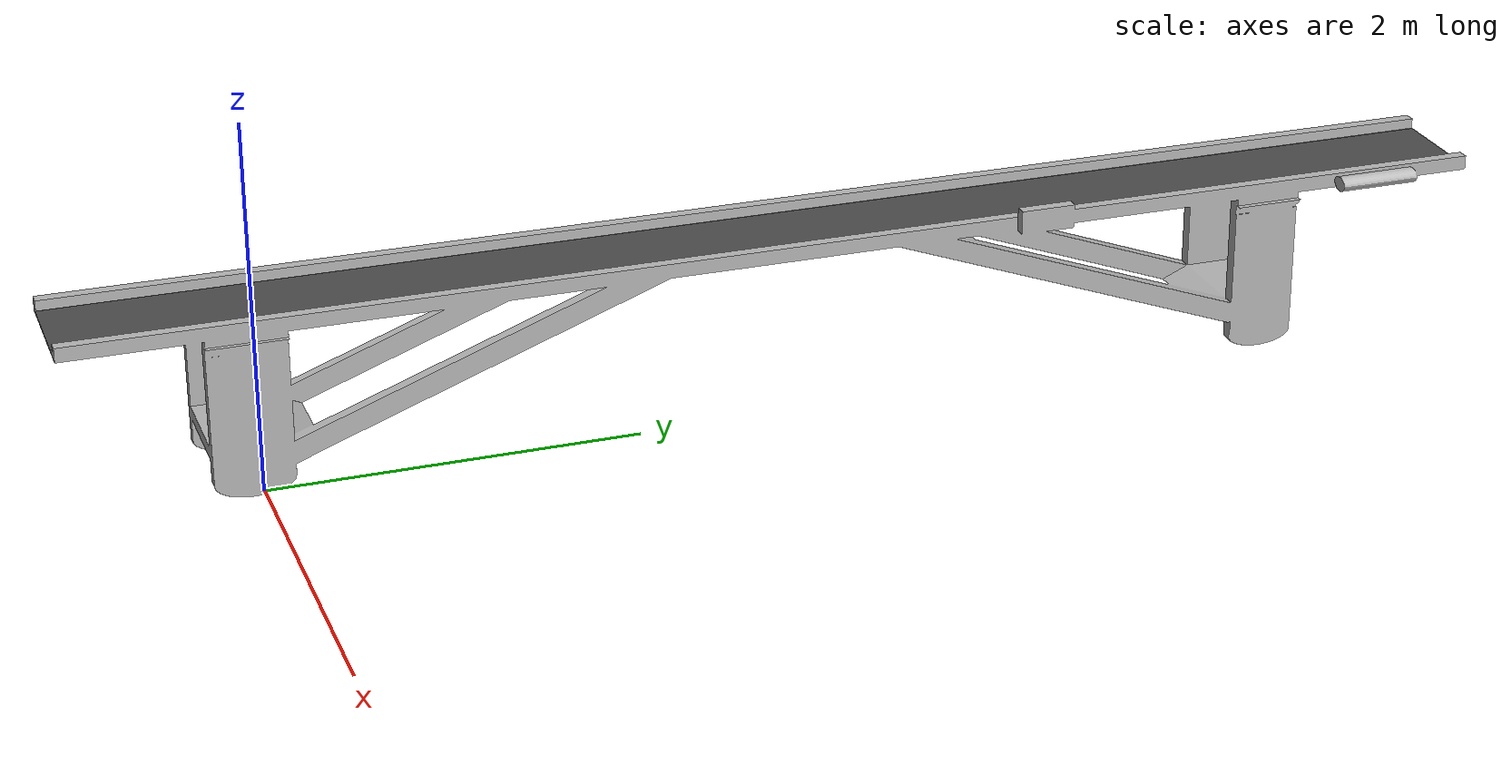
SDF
<?xml version='1.0'?>
<sdf version='1.6'>
  <model name='conveyor'>
    <link name='body'>
      <self_collide>0</self_collide>
      <enable_wind>0</enable_wind>
      <kinematic>0</kinematic>
      <pose frame=''>0 0 0 0 -0 0</pose>
      <gravity>1</gravity>
      <inertial>
        <mass>10</mass>
        <pose frame=''>0 0 0 0 -0 0</pose>
        <inertia>
          <ixx>1</ixx>
          <ixy>0</ixy>
          <ixz>0</ixz>
          <iyy>1</iyy>
          <iyz>0</iyz>
          <izz>1</izz>
        </inertia>
      </inertial>
      <visual name='visual'>
        <geometry>
          <mesh>
            <uri>model://conveyor/conveyor.stl</uri>
            <scale>0.9 1.7 0.68</scale>
          </mesh>
        </geometry>
        <pose frame=''>-0.6 -1 0.9 0 -0 0</pose>
        <transparency>0</transparency>
        <cast_shadows>1</cast_shadows>
      </visual>
    </link>

    <link name='belt'>
      <pose frame=''>-0.27 2.88 0.925 0 -0 1.57</pose>
      <inertial>
        <inertia>
          <ixx>3.8185</ixx>
          <ixy>0</ixy>
          <ixz>0</ixz>
          <iyy>1781.5</iyy>
          <iyz>0</iyz>
          <izz>1784.72</izz>
        </inertia>
        <mass>10</mass>
      </inertial>
      <visual name='belt_collision'>
        <geometry>
          <box>
            <size>7.77 0.5 0.006</size>
          </box>
        </geometry>
        <material>
          <script>
            <uri>file://media/materials/scripts/gazebo.material</uri>
            <name>Gazebo/DarkGrey</name>
          </script>
        </material>
      </visual>
      <collision name='belt_collision'>
        <geometry>
          <box>
            <size>10 0.5 0.006</size>
          </box>
        </geometry>
        <surface>
          <friction>
            <ode>
              <mu>1</mu>
              <mu2>1</mu2>
            </ode>
            <torsional>
              <coefficient>1000</coefficient>
              <patch_radius>0.1</patch_radius>
              <ode/>
            </torsional>
          </friction>
          <contact>
            <ode/>
          </contact>
          <bounce/>
        </surface>
        <max_contacts>10</max_contacts>
      </collision>
      <self_collide>0</self_collide>
      <enable_wind>0</enable_wind>
      <kinematic>0</kinematic>
    </link>

    <joint name='belt_joint' type='fixed'>
      <parent>body</parent>
      <child>belt</child>
      <pose frame=''>0 0 0 0 -0 0</pose>
      <axis>
        <xyz>1 0 0</xyz>
        <use_parent_model_frame>0</use_parent_model_frame>
        <limit>
          <lower>0</lower>
          <upper>1</upper>
          <effort>-1</effort>
          <velocity>-1</velocity>
        </limit>
        <dynamics>
          <spring_reference>0</spring_reference>
          <spring_stiffness>0</spring_stiffness>
          <damping>0</damping>
          <friction>0</friction>
        </dynamics>
      </axis>
      <physics>
        <ode>
          <limit>
            <cfm>0</cfm>
            <erp>0.2</erp>
          </limit>
          <suspension>
            <cfm>0</cfm>
            <erp>0.2</erp>
          </suspension>
        </ode>
      </physics>
    </joint>

    <static>1</static>
    <allow_auto_disable>1</allow_auto_disable>
  </model>
</sdf>
